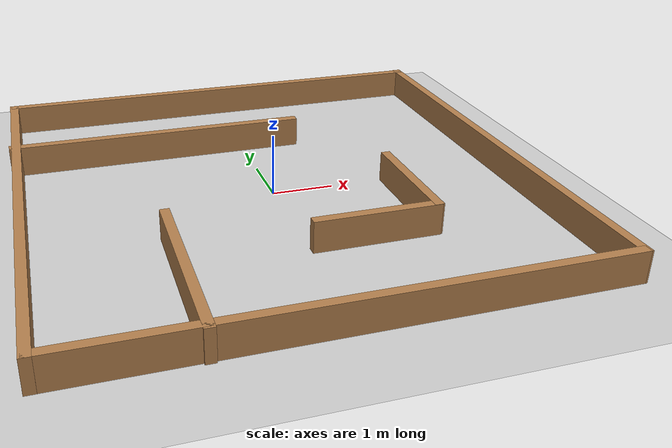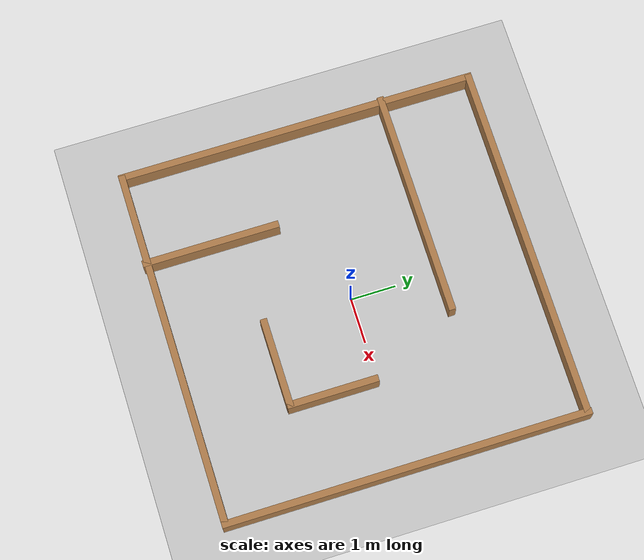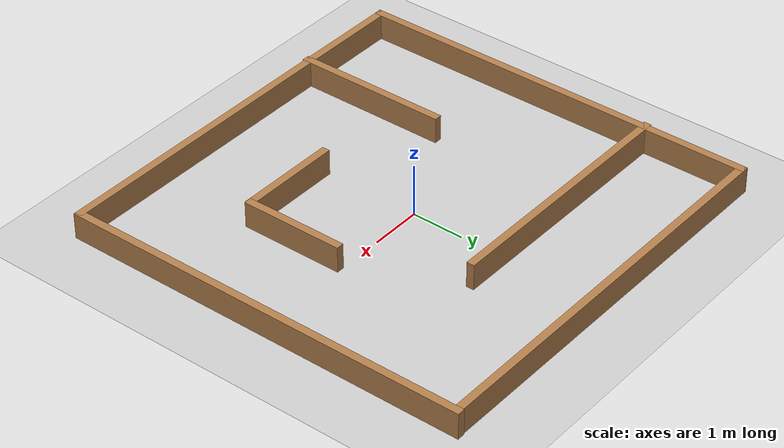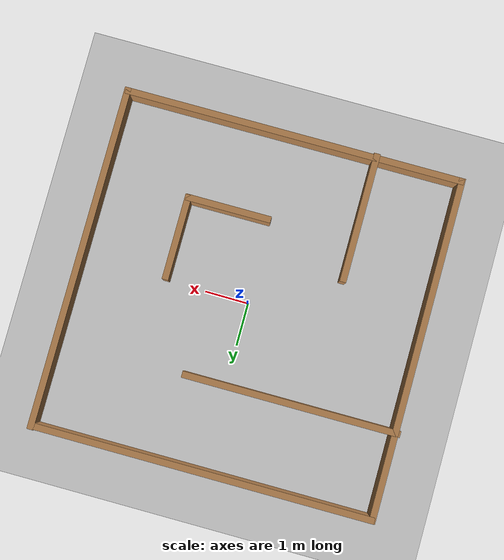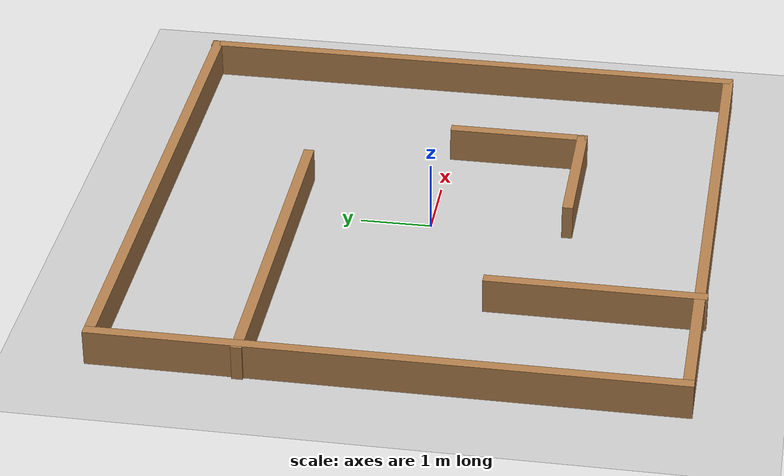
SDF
<sdf version="1.6">
 <world name="default">
  <light name="sun" type="directional">
   <pose>0 0 10 0 -0 0</pose>
   <diffuse>0.8 0.8 0.8 1</diffuse>
   <specular>0.2 0.2 0.2 1</specular>
   <attenuation>
    <range>1000</range>
    <constant>0.9</constant>
    <linear>0.01</linear>
    <quadratic>0.001</quadratic>
   </attenuation>
   <direction>-0.5 0.1 -0.9</direction>
  </light>
  <model name="ground_plane">
   <static>1</static>
   <link name="link">
    <collision name="collision">
     <geometry><plane><normal>0 0 1</normal><size>100 100</size></plane></geometry>
     <surface>
      <contact><collide_bitmask>65535</collide_bitmask></contact>
      <friction><ode><mu>100</mu><mu2>50</mu2></ode></friction>
     </surface>
    </collision>
    <visual name="visual">
     <cast_shadows>0</cast_shadows>
     <geometry><plane><normal>0 0 1</normal><size>100 100</size></plane></geometry>
     <material>
      <script><uri>file://media/materials/scripts/gazebo.material</uri><name>Gazebo/Grey</name></script>
     </material>
    </visual>
   </link>
  </model>
  <gravity>0 0 -9.8</gravity>
  <magnetic_field>6e-06 2.3e-05 -4.2e-05</magnetic_field>
  <atmosphere type="adiabatic"/>
  <physics name="default_physics" default="0" type="ode">
   <max_step_size>0.001</max_step_size>
   <real_time_factor>1</real_time_factor>
   <real_time_update_rate>1000</real_time_update_rate>
  </physics>
  <scene><ambient>0.4 0.4 0.4 1</ambient><background>0.7 0.7 0.7 1</background><shadows>1</shadows></scene>
  <audio><device>default</device></audio>
  <spherical_coordinates>
   <surface_model>EARTH_WGS84</surface_model>
   <latitude_deg>0</latitude_deg>
   <longitude_deg>0</longitude_deg>
   <elevation>0</elevation>
   <heading_deg>0</heading_deg>
  </spherical_coordinates>
  <model name="project_large">
   <link name="Wall_0">
    <pose>-0.019445 4.53087 0 0 -0 0</pose>
    <inertial>
     <inertia><ixx>0</ixx><ixy>0</ixy><ixz>0</ixz><iyy>0</iyy><iyz>0</iyz><izz>0</izz></inertia>
     <mass>0</mass>
    </inertial>
    <visual name="Wall_0_Visual">
     <pose>0 0 0.25 0 -0 0</pose>
     <geometry><box><size>7.95463 0.15 0.5</size></box></geometry>
     <material>
      <script><uri>file://media/materials/scripts/gazebo.material</uri><name>Gazebo/Wood</name></script>
      <ambient>1 1 1 1</ambient>
     </material>
    </visual>
    <collision name="Wall_0_Collision">
     <pose>0 0 0.25 0 -0 0</pose>
     <geometry><box><size>7.95463 0.15 0.5</size></box></geometry>
     <surface>
      <friction>
       <ode><mu>1</mu><mu2>1</mu2><fdir1>0 0 0</fdir1><slip1>0</slip1><slip2>0</slip2></ode>
       <torsional>
        <coefficient>1</coefficient>
        <patch_radius>0</patch_radius>
        <surface_radius>0</surface_radius>
        <use_patch_radius>1</use_patch_radius>
        <ode><slip>0</slip></ode>
       </torsional>
      </friction>
      <bounce><restitution_coefficient>0</restitution_coefficient><threshold>1e+06</threshold></bounce>
      <contact>
       <collide_without_contact>0</collide_without_contact>
       <collide_without_contact_bitmask>1</collide_without_contact_bitmask>
       <collide_bitmask>1</collide_bitmask>
       <ode>
        <soft_cfm>0</soft_cfm>
        <soft_erp>0.2</soft_erp>
        <kp>1e+13</kp>
        <kd>1</kd>
        <max_vel>0.01</max_vel>
        <min_depth>0</min_depth>
       </ode>
       <bullet>
        <split_impulse>1</split_impulse>
        <split_impulse_penetration_threshold>-0.01</split_impulse_penetration_threshold>
        <soft_cfm>0</soft_cfm>
        <soft_erp>0.2</soft_erp>
        <kp>1e+13</kp>
        <kd>1</kd>
       </bullet>
      </contact>
     </surface>
    </collision>
   </link>
   <link name="Wall_0_clone">
    <pose>-1.54338 2.54434 0 0 -0 0</pose>
    <inertial>
     <inertia><ixx>0</ixx><ixy>0</ixy><ixz>0</ixz><iyy>0</iyy><iyz>0</iyz><izz>0</izz></inertia>
     <mass>0</mass>
    </inertial>
    <visual name="Wall_0_Visual">
     <pose>0 0 0.25 0 -0 0</pose>
     <geometry><box><size>5.03427 0.15 0.5</size></box></geometry>
     <material>
      <script><uri>file://media/materials/scripts/gazebo.material</uri><name>Gazebo/Wood</name></script>
      <ambient>1 1 1 1</ambient>
      <shader type="pixel"/>
     </material>
    </visual>
    <collision name="Wall_0_Collision">
     <pose>0 0 0.25 0 -0 0</pose>
     <geometry><box><size>5.03427 0.15 0.5</size></box></geometry>
     <surface>
      <friction>
       <ode><mu>1</mu><mu2>1</mu2><fdir1>0 0 0</fdir1><slip1>0</slip1><slip2>0</slip2></ode>
       <torsional>
        <coefficient>1</coefficient>
        <patch_radius>0</patch_radius>
        <surface_radius>0</surface_radius>
        <use_patch_radius>1</use_patch_radius>
        <ode><slip>0</slip></ode>
       </torsional>
      </friction>
      <bounce><restitution_coefficient>0</restitution_coefficient><threshold>1e+06</threshold></bounce>
      <contact>
       <collide_without_contact>0</collide_without_contact>
       <collide_without_contact_bitmask>1</collide_without_contact_bitmask>
       <collide_bitmask>1</collide_bitmask>
       <ode>
        <soft_cfm>0</soft_cfm>
        <soft_erp>0.2</soft_erp>
        <kp>1e+13</kp>
        <kd>1</kd>
        <max_vel>0.01</max_vel>
        <min_depth>0</min_depth>
       </ode>
       <bullet>
        <split_impulse>1</split_impulse>
        <split_impulse_penetration_threshold>-0.01</split_impulse_penetration_threshold>
        <soft_cfm>0</soft_cfm>
        <soft_erp>0.2</soft_erp>
        <kp>1e+13</kp>
        <kd>1</kd>
       </bullet>
      </contact>
     </surface>
    </collision>
   </link>
   <link name="Wall_2">
    <pose>-3.94692 0.610965 0 0 0 -1.5708</pose>
    <inertial>
     <inertia><ixx>0</ixx><ixy>0</ixy><ixz>0</ixz><iyy>0</iyy><iyz>0</iyz><izz>0</izz></inertia>
     <mass>0</mass>
    </inertial>
    <visual name="Wall_2_Visual">
     <pose>0 0 0.25 0 -0 0</pose>
     <geometry><box><size>7.98826 0.15 0.5</size></box></geometry>
     <material>
      <script><uri>file://media/materials/scripts/gazebo.material</uri><name>Gazebo/Wood</name></script>
      <ambient>1 1 1 1</ambient>
     </material>
    </visual>
    <collision name="Wall_2_Collision">
     <pose>0 0 0.25 0 -0 0</pose>
     <geometry><box><size>7.98826 0.15 0.5</size></box></geometry>
     <surface>
      <friction>
       <ode><mu>1</mu><mu2>1</mu2><fdir1>0 0 0</fdir1><slip1>0</slip1><slip2>0</slip2></ode>
       <torsional>
        <coefficient>1</coefficient>
        <patch_radius>0</patch_radius>
        <surface_radius>0</surface_radius>
        <use_patch_radius>1</use_patch_radius>
        <ode><slip>0</slip></ode>
       </torsional>
      </friction>
      <bounce><restitution_coefficient>0</restitution_coefficient><threshold>1e+06</threshold></bounce>
      <contact>
       <collide_without_contact>0</collide_without_contact>
       <collide_without_contact_bitmask>1</collide_without_contact_bitmask>
       <collide_bitmask>1</collide_bitmask>
       <ode>
        <soft_cfm>0</soft_cfm>
        <soft_erp>0.2</soft_erp>
        <kp>1e+13</kp>
        <kd>1</kd>
        <max_vel>0.01</max_vel>
        <min_depth>0</min_depth>
       </ode>
       <bullet>
        <split_impulse>1</split_impulse>
        <split_impulse_penetration_threshold>-0.01</split_impulse_penetration_threshold>
        <soft_cfm>0</soft_cfm>
        <soft_erp>0.2</soft_erp>
        <kp>1e+13</kp>
        <kd>1</kd>
       </bullet>
      </contact>
     </surface>
    </collision>
   </link>
   <link name="Wall_2_clone">
    <pose>-1.94739 -1.9052 0 0 0 -1.5708</pose>
    <inertial>
     <inertia><ixx>0</ixx><ixy>0</ixy><ixz>0</ixz><iyy>0</iyy><iyz>0</iyz><izz>0</izz></inertia>
     <mass>0</mass>
    </inertial>
    <visual name="Wall_2_Visual">
     <pose>0 0 0.25 0 -0 0</pose>
     <geometry><box><size>3.01787 0.15 0.5</size></box></geometry>
     <material>
      <script><uri>file://media/materials/scripts/gazebo.material</uri><name>Gazebo/Wood</name></script>
      <ambient>1 1 1 1</ambient>
      <shader type="pixel"/>
     </material>
    </visual>
    <collision name="Wall_2_Collision">
     <pose>0 0 0.25 0 -0 0</pose>
     <geometry><box><size>3.01787 0.15 0.5</size></box></geometry>
     <surface>
      <friction>
       <ode><mu>1</mu><mu2>1</mu2><fdir1>0 0 0</fdir1><slip1>0</slip1><slip2>0</slip2></ode>
       <torsional>
        <coefficient>1</coefficient>
        <patch_radius>0</patch_radius>
        <surface_radius>0</surface_radius>
        <use_patch_radius>1</use_patch_radius>
        <ode><slip>0</slip></ode>
       </torsional>
      </friction>
      <bounce><restitution_coefficient>0</restitution_coefficient><threshold>1e+06</threshold></bounce>
      <contact>
       <collide_without_contact>0</collide_without_contact>
       <collide_without_contact_bitmask>1</collide_without_contact_bitmask>
       <collide_bitmask>1</collide_bitmask>
       <ode>
        <soft_cfm>0</soft_cfm>
        <soft_erp>0.2</soft_erp>
        <kp>1e+13</kp>
        <kd>1</kd>
        <max_vel>0.01</max_vel>
        <min_depth>0</min_depth>
       </ode>
       <bullet>
        <split_impulse>1</split_impulse>
        <split_impulse_penetration_threshold>-0.01</split_impulse_penetration_threshold>
        <soft_cfm>0</soft_cfm>
        <soft_erp>0.2</soft_erp>
        <kp>1e+13</kp>
        <kd>1</kd>
       </bullet>
      </contact>
     </surface>
    </collision>
   </link>
   <link name="Wall_2_clone_0">
    <pose>1.91102 -0.387064 0 0 0 -1.5708</pose>
    <inertial>
     <inertia><ixx>0</ixx><ixy>0</ixy><ixz>0</ixz><iyy>0</iyy><iyz>0</iyz><izz>0</izz></inertia>
     <mass>0</mass>
    </inertial>
    <visual name="Wall_2_Visual">
     <pose>0 0 0.25 0 -0 0</pose>
     <geometry><box><size>1.99316 0.15 0.5</size></box></geometry>
     <material>
      <script><uri>file://media/materials/scripts/gazebo.material</uri><name>Gazebo/Wood</name></script>
      <ambient>1 1 1 1</ambient>
      <shader type="pixel"/>
     </material>
    </visual>
    <collision name="Wall_2_Collision">
     <pose>0 0 0.25 0 -0 0</pose>
     <geometry><box><size>1.99316 0.15 0.5</size></box></geometry>
     <surface>
      <friction>
       <ode><mu>1</mu><mu2>1</mu2><fdir1>0 0 0</fdir1><slip1>0</slip1><slip2>0</slip2></ode>
       <torsional>
        <coefficient>1</coefficient>
        <patch_radius>0</patch_radius>
        <surface_radius>0</surface_radius>
        <use_patch_radius>1</use_patch_radius>
        <ode><slip>0</slip></ode>
       </torsional>
      </friction>
      <bounce><restitution_coefficient>0</restitution_coefficient><threshold>1e+06</threshold></bounce>
      <contact>
       <collide_without_contact>0</collide_without_contact>
       <collide_without_contact_bitmask>1</collide_without_contact_bitmask>
       <collide_bitmask>1</collide_bitmask>
       <ode>
        <soft_cfm>0</soft_cfm>
        <soft_erp>0.2</soft_erp>
        <kp>1e+13</kp>
        <kd>1</kd>
        <max_vel>0.01</max_vel>
        <min_depth>0</min_depth>
       </ode>
       <bullet>
        <split_impulse>1</split_impulse>
        <split_impulse_penetration_threshold>-0.01</split_impulse_penetration_threshold>
        <soft_cfm>0</soft_cfm>
        <soft_erp>0.2</soft_erp>
        <kp>1e+13</kp>
        <kd>1</kd>
       </bullet>
      </contact>
     </surface>
    </collision>
   </link>
   <link name="Wall_3">
    <pose>-0.026453 -3.3068 0 0 -0 0</pose>
    <inertial>
     <inertia><ixx>0</ixx><ixy>0</ixy><ixz>0</ixz><iyy>0</iyy><iyz>0</iyz><izz>0</izz></inertia>
     <mass>0</mass>
    </inertial>
    <visual name="Wall_3_Visual">
     <pose>0 0 0.25 0 -0 0</pose>
     <geometry><box><size>7.94315 0.15 0.5</size></box></geometry>
     <material>
      <script><uri>file://media/materials/scripts/gazebo.material</uri><name>Gazebo/Wood</name></script>
      <ambient>1 1 1 1</ambient>
     </material>
    </visual>
    <collision name="Wall_3_Collision">
     <pose>0 0 0.25 0 -0 0</pose>
     <geometry><box><size>7.94315 0.15 0.5</size></box></geometry>
     <surface>
      <friction>
       <ode><mu>1</mu><mu2>1</mu2><fdir1>0 0 0</fdir1><slip1>0</slip1><slip2>0</slip2></ode>
       <torsional>
        <coefficient>1</coefficient>
        <patch_radius>0</patch_radius>
        <surface_radius>0</surface_radius>
        <use_patch_radius>1</use_patch_radius>
        <ode><slip>0</slip></ode>
       </torsional>
      </friction>
      <bounce><restitution_coefficient>0</restitution_coefficient><threshold>1e+06</threshold></bounce>
      <contact>
       <collide_without_contact>0</collide_without_contact>
       <collide_without_contact_bitmask>1</collide_without_contact_bitmask>
       <collide_bitmask>1</collide_bitmask>
       <ode>
        <soft_cfm>0</soft_cfm>
        <soft_erp>0.2</soft_erp>
        <kp>1e+13</kp>
        <kd>1</kd>
        <max_vel>0.01</max_vel>
        <min_depth>0</min_depth>
       </ode>
       <bullet>
        <split_impulse>1</split_impulse>
        <split_impulse_penetration_threshold>-0.01</split_impulse_penetration_threshold>
        <soft_cfm>0</soft_cfm>
        <soft_erp>0.2</soft_erp>
        <kp>1e+13</kp>
        <kd>1</kd>
       </bullet>
      </contact>
     </surface>
    </collision>
   </link>
   <link name="Wall_3_clone">
    <pose>0.9667 -1.31826 0 0 -0 0</pose>
    <inertial>
     <inertia><ixx>0</ixx><ixy>0</ixy><ixz>0</ixz><iyy>0</iyy><iyz>0</iyz><izz>0</izz></inertia>
     <mass>0</mass>
    </inertial>
    <visual name="Wall_3_Visual">
     <pose>0 0 0.25 0 -0 0</pose>
     <geometry><box><size>1.98351 0.15 0.5</size></box></geometry>
     <material>
      <script><uri>file://media/materials/scripts/gazebo.material</uri><name>Gazebo/Wood</name></script>
      <ambient>1 1 1 1</ambient>
      <shader type="pixel"/>
     </material>
    </visual>
    <collision name="Wall_3_Collision">
     <pose>0 0 0.25 0 -0 0</pose>
     <geometry><box><size>1.98351 0.15 0.5</size></box></geometry>
     <surface>
      <friction>
       <ode><mu>1</mu><mu2>1</mu2><fdir1>0 0 0</fdir1><slip1>0</slip1><slip2>0</slip2></ode>
       <torsional>
        <coefficient>1</coefficient>
        <patch_radius>0</patch_radius>
        <surface_radius>0</surface_radius>
        <use_patch_radius>1</use_patch_radius>
        <ode><slip>0</slip></ode>
       </torsional>
      </friction>
      <bounce><restitution_coefficient>0</restitution_coefficient><threshold>1e+06</threshold></bounce>
      <contact>
       <collide_without_contact>0</collide_without_contact>
       <collide_without_contact_bitmask>1</collide_without_contact_bitmask>
       <collide_bitmask>1</collide_bitmask>
       <ode>
        <soft_cfm>0</soft_cfm>
        <soft_erp>0.2</soft_erp>
        <kp>1e+13</kp>
        <kd>1</kd>
        <max_vel>0.01</max_vel>
        <min_depth>0</min_depth>
       </ode>
       <bullet>
        <split_impulse>1</split_impulse>
        <split_impulse_penetration_threshold>-0.01</split_impulse_penetration_threshold>
        <soft_cfm>0</soft_cfm>
        <soft_erp>0.2</soft_erp>
        <kp>1e+13</kp>
        <kd>1</kd>
       </bullet>
      </contact>
     </surface>
    </collision>
   </link>
   <link name="Wall_4">
    <pose>3.89657 0.619626 0 0 -0 1.5708</pose>
    <inertial>
     <inertia><ixx>0</ixx><ixy>0</ixy><ixz>0</ixz><iyy>0</iyy><iyz>0</iyz><izz>0</izz></inertia>
     <mass>0</mass>
    </inertial>
    <visual name="Wall_4_Visual">
     <pose>0 0 0.25 0 -0 0</pose>
     <geometry><box><size>8.00243 0.15 0.5</size></box></geometry>
     <material>
      <script><uri>file://media/materials/scripts/gazebo.material</uri><name>Gazebo/Wood</name></script>
      <ambient>1 1 1 1</ambient>
     </material>
    </visual>
    <collision name="Wall_4_Collision">
     <pose>0 0 0.25 0 -0 0</pose>
     <geometry><box><size>8.00243 0.15 0.5</size></box></geometry>
     <surface>
      <friction>
       <ode><mu>1</mu><mu2>1</mu2><fdir1>0 0 0</fdir1><slip1>0</slip1><slip2>0</slip2></ode>
       <torsional>
        <coefficient>1</coefficient>
        <patch_radius>0</patch_radius>
        <surface_radius>0</surface_radius>
        <use_patch_radius>1</use_patch_radius>
        <ode><slip>0</slip></ode>
       </torsional>
      </friction>
      <bounce><restitution_coefficient>0</restitution_coefficient><threshold>1e+06</threshold></bounce>
      <contact>
       <collide_without_contact>0</collide_without_contact>
       <collide_without_contact_bitmask>1</collide_without_contact_bitmask>
       <collide_bitmask>1</collide_bitmask>
       <ode>
        <soft_cfm>0</soft_cfm>
        <soft_erp>0.2</soft_erp>
        <kp>1e+13</kp>
        <kd>1</kd>
        <max_vel>0.01</max_vel>
        <min_depth>0</min_depth>
       </ode>
       <bullet>
        <split_impulse>1</split_impulse>
        <split_impulse_penetration_threshold>-0.01</split_impulse_penetration_threshold>
        <soft_cfm>0</soft_cfm>
        <soft_erp>0.2</soft_erp>
        <kp>1e+13</kp>
        <kd>1</kd>
       </bullet>
      </contact>
     </surface>
    </collision>
   </link>
   <static>1</static>
   <pose>0.01822 -0.609067 0 0 -0 0</pose>
  </model>
 </world>
</sdf>
